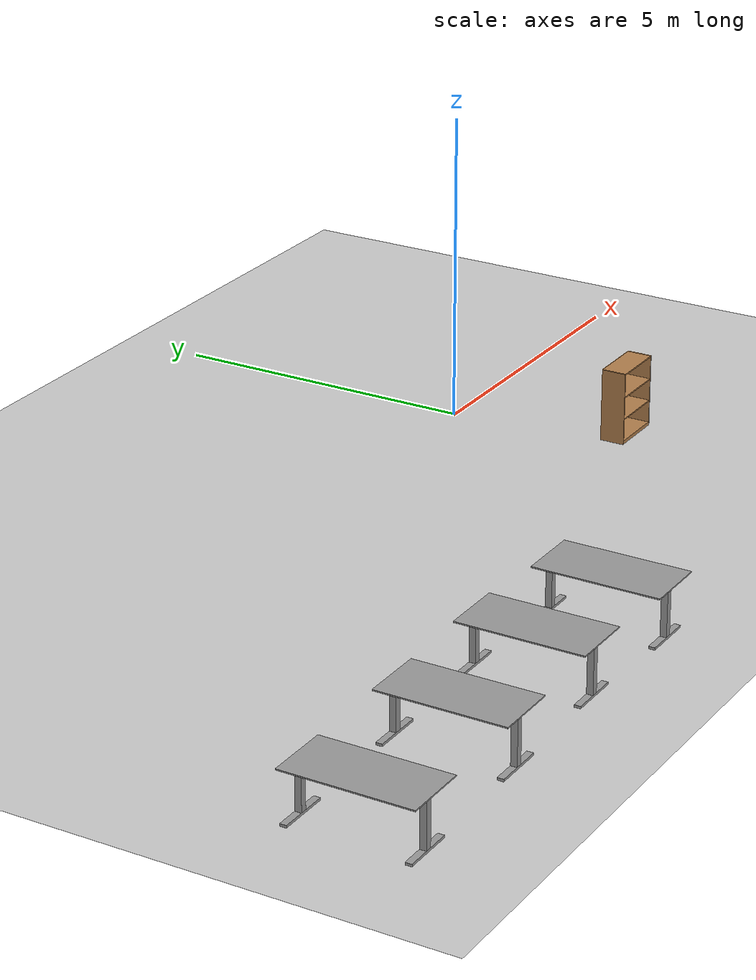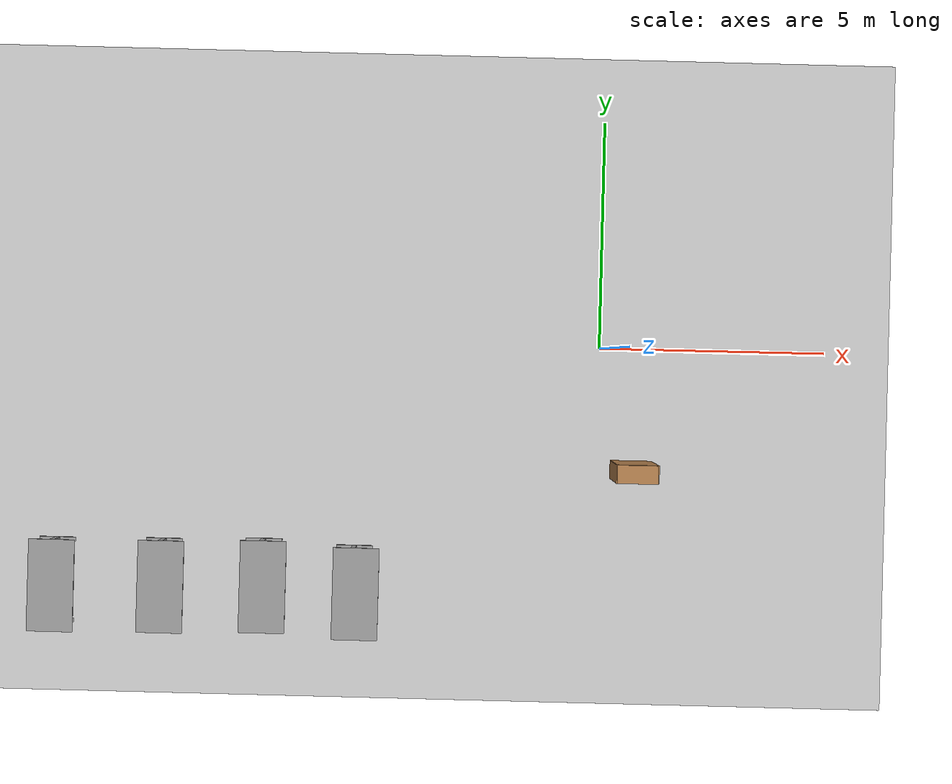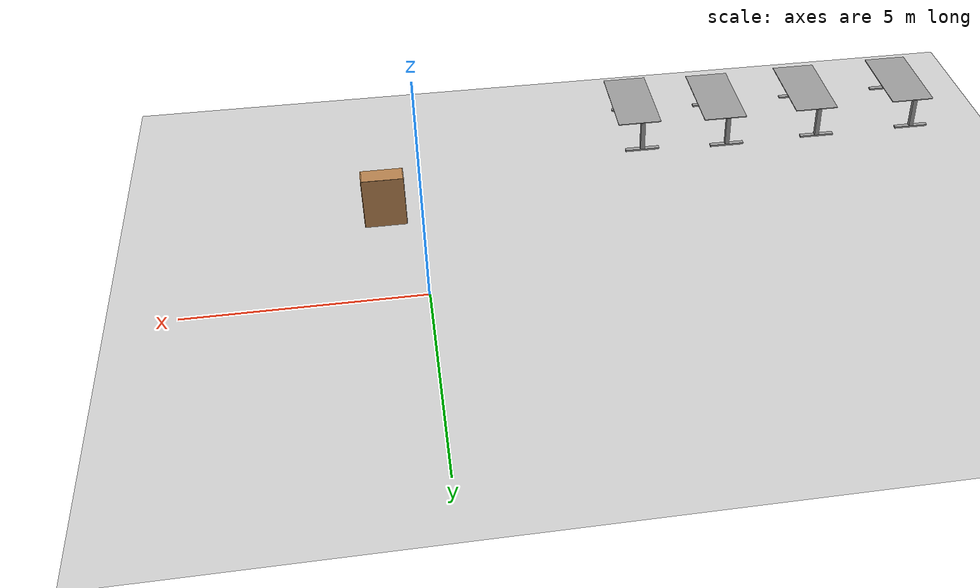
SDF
<sdf version="1.7">
 <world name="default">
  <model name="ground_plane">
   <static>1</static>
   <link name="link">
    <collision name="collision">
     <geometry><plane><normal>0 0 1</normal><size>100 100</size></plane></geometry>
     <surface>
      <contact><collide_bitmask>65535</collide_bitmask></contact>
      <friction><ode><mu>100</mu><mu2>50</mu2></ode></friction>
     </surface>
    </collision>
    <visual name="visual">
     <cast_shadows>0</cast_shadows>
     <geometry><plane><normal>0 0 1</normal><size>100 100</size></plane></geometry>
     <material>
      <script><uri>file://media/materials/scripts/gazebo.material</uri><name>Gazebo/Grey</name></script>
     </material>
    </visual>
   </link>
  </model>
  <model name="Desk">
   <link name="link_0">
    <pose>-5.87459 -9.93361 0.359623 0 -0 0</pose>
    <inertial>
     <mass>1</mass>
     <inertia>
      <ixx>0.166667</ixx>
      <ixy>0</ixy>
      <ixz>0</ixz>
      <iyy>0.166667</iyy>
      <iyz>0</iyz>
      <izz>0.166667</izz>
     </inertia>
    </inertial>
    <visual name="ModelPreview_0::link_0::visual_3">
     <pose>0 0 -0.1 0 -0 0</pose>
     <geometry><box><size>0.1 0.1 0.75</size></box></geometry>
     <material>
      <lighting>1</lighting>
      <script><uri>file://media/materials/scripts/gazebo.material</uri><name>Gazebo/Grey</name></script>
      <shader type="pixel"><normal_map>__default__</normal_map></shader>
      <ambient>0.3 0.3 0.3 1</ambient>
      <diffuse>0.7 0.7 0.7 1</diffuse>
      <specular>0.01 0.01 0.01 1</specular>
      <emissive>0 0 0 1</emissive>
     </material>
    </visual>
    <visual name="visual">
     <pose>0 0 -0.5 0 -0 0</pose>
     <geometry><box><size>0.8 0.1 0.05</size></box></geometry>
     <material>
      <lighting>1</lighting>
      <script><uri>file://media/materials/scripts/gazebo.material</uri><name>Gazebo/Grey</name></script>
      <shader type="pixel"><normal_map>__default__</normal_map></shader>
      <ambient>0.3 0.3 0.3 1</ambient>
      <diffuse>0.7 0.7 0.7 1</diffuse>
      <specular>0.01 0.01 0.01 1</specular>
      <emissive>0 0 0 1</emissive>
     </material>
    </visual>
    <visual name="ModelPreview_0::link_0::visual_2">
     <pose>0 1.8 -0.1 0 -0 0</pose>
     <geometry><box><size>0.1 0.1 0.75</size></box></geometry>
     <material>
      <lighting>1</lighting>
      <script><uri>file://media/materials/scripts/gazebo.material</uri><name>Gazebo/Grey</name></script>
      <shader type="pixel"><normal_map>__default__</normal_map></shader>
      <ambient>0.3 0.3 0.3 1</ambient>
      <diffuse>0.7 0.7 0.7 1</diffuse>
      <specular>0.01 0.01 0.01 1</specular>
      <emissive>0 0 0 1</emissive>
     </material>
    </visual>
    <visual name="ModelPreview_0::link_0::visual_1">
     <pose>0 1.8 -0.5 0 -0 0</pose>
     <geometry><box><size>0.8 0.1 0.05</size></box></geometry>
     <material>
      <lighting>1</lighting>
      <script><uri>file://media/materials/scripts/gazebo.material</uri><name>Gazebo/Grey</name></script>
      <shader type="pixel"><normal_map>__default__</normal_map></shader>
      <ambient>0.3 0.3 0.3 1</ambient>
      <diffuse>0.7 0.7 0.7 1</diffuse>
      <specular>0.01 0.01 0.01 1</specular>
      <emissive>0 0 0 1</emissive>
     </material>
    </visual>
    <collision name="collision">
     <pose>0 0.9 -0.1 0 -0 0</pose>
     <geometry><box><size>0.8 2 0.8</size></box></geometry>
     <surface>
      <friction>
       <ode><mu>1</mu><mu2>1</mu2><fdir1>0 0 0</fdir1><slip1>0</slip1><slip2>0</slip2></ode>
       <torsional>
        <coefficient>1</coefficient>
        <patch_radius>0</patch_radius>
        <surface_radius>0</surface_radius>
        <use_patch_radius>1</use_patch_radius>
        <ode><slip>0</slip></ode>
       </torsional>
      </friction>
      <bounce><restitution_coefficient>0</restitution_coefficient><threshold>1e+06</threshold></bounce>
      <contact>
       <collide_without_contact>0</collide_without_contact>
       <collide_without_contact_bitmask>1</collide_without_contact_bitmask>
       <collide_bitmask>1</collide_bitmask>
       <ode>
        <soft_cfm>0</soft_cfm>
        <soft_erp>0.2</soft_erp>
        <kp>1e+13</kp>
        <kd>1</kd>
        <max_vel>0.01</max_vel>
        <min_depth>0</min_depth>
       </ode>
       <bullet>
        <split_impulse>1</split_impulse>
        <split_impulse_penetration_threshold>-0.01</split_impulse_penetration_threshold>
        <soft_cfm>0</soft_cfm>
        <soft_erp>0.2</soft_erp>
        <kp>1e+13</kp>
        <kd>1</kd>
       </bullet>
      </contact>
     </surface>
    </collision>
   </link>
   <link name="link_1">
    <pose>-5.78051 -9.03331 0.640377 0 -0 0</pose>
    <inertial>
     <mass>1</mass>
     <inertia>
      <ixx>0.166667</ixx>
      <ixy>0</ixy>
      <ixz>0</ixz>
      <iyy>0.166667</iyy>
      <iyz>0</iyz>
      <izz>0.166667</izz>
     </inertia>
    </inertial>
    <visual name="visual">
     <geometry><box><size>1 2 0.02</size></box></geometry>
     <material>
      <lighting>1</lighting>
      <script><uri>file://media/materials/scripts/gazebo.material</uri><name>Gazebo/Grey</name></script>
      <shader type="pixel"><normal_map>__default__</normal_map></shader>
      <ambient>0.3 0.3 0.3 1</ambient>
      <diffuse>0.7 0.7 0.7 1</diffuse>
      <specular>0.01 0.01 0.01 1</specular>
      <emissive>0 0 0 1</emissive>
     </material>
    </visual>
    <collision name="collision">
     <geometry><box><size>1 2 0.02</size></box></geometry>
     <surface>
      <friction>
       <ode><mu>1</mu><mu2>1</mu2><fdir1>0 0 0</fdir1><slip1>0</slip1><slip2>0</slip2></ode>
       <torsional>
        <coefficient>1</coefficient>
        <patch_radius>0</patch_radius>
        <surface_radius>0</surface_radius>
        <use_patch_radius>1</use_patch_radius>
        <ode><slip>0</slip></ode>
       </torsional>
      </friction>
      <bounce><restitution_coefficient>0</restitution_coefficient><threshold>1e+06</threshold></bounce>
      <contact>
       <collide_without_contact>0</collide_without_contact>
       <collide_without_contact_bitmask>1</collide_without_contact_bitmask>
       <collide_bitmask>1</collide_bitmask>
       <ode>
        <soft_cfm>0</soft_cfm>
        <soft_erp>0.2</soft_erp>
        <kp>1e+13</kp>
        <kd>1</kd>
        <max_vel>0.01</max_vel>
        <min_depth>0</min_depth>
       </ode>
       <bullet>
        <split_impulse>1</split_impulse>
        <split_impulse_penetration_threshold>-0.01</split_impulse_penetration_threshold>
        <soft_cfm>0</soft_cfm>
        <soft_erp>0.2</soft_erp>
        <kp>1e+13</kp>
        <kd>1</kd>
       </bullet>
      </contact>
     </surface>
    </collision>
   </link>
   <joint name="link_0_JOINT_1" type="revolute">
    <parent>link_0</parent>
    <child>link_1</child>
    <axis>
     <xyz>1 0 0</xyz>
     <limit>
      <lower>-1.79769e+308</lower>
      <upper>1.79769e+308</upper>
      <effort>-1</effort>
      <velocity>-1</velocity>
     </limit>
     <dynamics>
      <spring_reference>0</spring_reference>
      <spring_stiffness>0</spring_stiffness>
      <damping>0</damping>
     </dynamics>
    </axis>
    <physics>
     <ode><limit><cfm>0</cfm><erp>0.2</erp></limit><suspension><cfm>0</cfm><erp>0.2</erp></suspension></ode>
    </physics>
   </joint>
   <static>0</static>
   <pose>0.541099 3.55014 0.140352 -2e-06 -0 -0.001993</pose>
  </model>
  <model name="Desk_clone_1">
   <link name="link_0">
    <pose>-5.87459 -9.93361 0.359623 0 -0 0</pose>
    <inertial>
     <mass>1</mass>
     <inertia>
      <ixx>0.166667</ixx>
      <ixy>0</ixy>
      <ixz>0</ixz>
      <iyy>0.166667</iyy>
      <iyz>0</iyz>
      <izz>0.166667</izz>
     </inertia>
    </inertial>
    <visual name="ModelPreview_0::link_0::visual_3">
     <pose>0 0 -0.1 0 -0 0</pose>
     <geometry><box><size>0.1 0.1 0.75</size></box></geometry>
     <material>
      <lighting>1</lighting>
      <script><uri>file://media/materials/scripts/gazebo.material</uri><name>Gazebo/Grey</name></script>
      <shader type="pixel"><normal_map>__default__</normal_map></shader>
      <ambient>0.3 0.3 0.3 1</ambient>
      <diffuse>0.7 0.7 0.7 1</diffuse>
      <specular>0.01 0.01 0.01 1</specular>
      <emissive>0 0 0 1</emissive>
     </material>
    </visual>
    <visual name="visual">
     <pose>0 0 -0.5 0 -0 0</pose>
     <geometry><box><size>0.8 0.1 0.05</size></box></geometry>
     <material>
      <lighting>1</lighting>
      <script><uri>file://media/materials/scripts/gazebo.material</uri><name>Gazebo/Grey</name></script>
      <shader type="pixel"><normal_map>__default__</normal_map></shader>
      <ambient>0.3 0.3 0.3 1</ambient>
      <diffuse>0.7 0.7 0.7 1</diffuse>
      <specular>0.01 0.01 0.01 1</specular>
      <emissive>0 0 0 1</emissive>
     </material>
    </visual>
    <visual name="ModelPreview_0::link_0::visual_2">
     <pose>0 1.8 -0.1 0 -0 0</pose>
     <geometry><box><size>0.1 0.1 0.75</size></box></geometry>
     <material>
      <lighting>1</lighting>
      <script><uri>file://media/materials/scripts/gazebo.material</uri><name>Gazebo/Grey</name></script>
      <shader type="pixel"><normal_map>__default__</normal_map></shader>
      <ambient>0.3 0.3 0.3 1</ambient>
      <diffuse>0.7 0.7 0.7 1</diffuse>
      <specular>0.01 0.01 0.01 1</specular>
      <emissive>0 0 0 1</emissive>
     </material>
    </visual>
    <visual name="ModelPreview_0::link_0::visual_1">
     <pose>0 1.8 -0.5 0 -0 0</pose>
     <geometry><box><size>0.8 0.1 0.05</size></box></geometry>
     <material>
      <lighting>1</lighting>
      <script><uri>file://media/materials/scripts/gazebo.material</uri><name>Gazebo/Grey</name></script>
      <shader type="pixel"><normal_map>__default__</normal_map></shader>
      <ambient>0.3 0.3 0.3 1</ambient>
      <diffuse>0.7 0.7 0.7 1</diffuse>
      <specular>0.01 0.01 0.01 1</specular>
      <emissive>0 0 0 1</emissive>
     </material>
    </visual>
    <collision name="collision">
     <pose>0 0.9 -0.1 0 -0 0</pose>
     <geometry><box><size>0.8 2 0.8</size></box></geometry>
     <surface>
      <friction>
       <ode><mu>1</mu><mu2>1</mu2><fdir1>0 0 0</fdir1><slip1>0</slip1><slip2>0</slip2></ode>
       <torsional>
        <coefficient>1</coefficient>
        <patch_radius>0</patch_radius>
        <surface_radius>0</surface_radius>
        <use_patch_radius>1</use_patch_radius>
        <ode><slip>0</slip></ode>
       </torsional>
      </friction>
      <bounce><restitution_coefficient>0</restitution_coefficient><threshold>1e+06</threshold></bounce>
      <contact>
       <collide_without_contact>0</collide_without_contact>
       <collide_without_contact_bitmask>1</collide_without_contact_bitmask>
       <collide_bitmask>1</collide_bitmask>
       <ode>
        <soft_cfm>0</soft_cfm>
        <soft_erp>0.2</soft_erp>
        <kp>1e+13</kp>
        <kd>1</kd>
        <max_vel>0.01</max_vel>
        <min_depth>0</min_depth>
       </ode>
       <bullet>
        <split_impulse>1</split_impulse>
        <split_impulse_penetration_threshold>-0.01</split_impulse_penetration_threshold>
        <soft_cfm>0</soft_cfm>
        <soft_erp>0.2</soft_erp>
        <kp>1e+13</kp>
        <kd>1</kd>
       </bullet>
      </contact>
     </surface>
    </collision>
   </link>
   <link name="link_1">
    <pose>-5.78051 -9.03331 0.640377 0 -0 0</pose>
    <inertial>
     <mass>1</mass>
     <inertia>
      <ixx>0.166667</ixx>
      <ixy>0</ixy>
      <ixz>0</ixz>
      <iyy>0.166667</iyy>
      <iyz>0</iyz>
      <izz>0.166667</izz>
     </inertia>
    </inertial>
    <visual name="visual">
     <geometry><box><size>1 2 0.02</size></box></geometry>
     <material>
      <lighting>1</lighting>
      <script><uri>file://media/materials/scripts/gazebo.material</uri><name>Gazebo/Grey</name></script>
      <shader type="pixel"><normal_map>__default__</normal_map></shader>
      <ambient>0.3 0.3 0.3 1</ambient>
      <diffuse>0.7 0.7 0.7 1</diffuse>
      <specular>0.01 0.01 0.01 1</specular>
      <emissive>0 0 0 1</emissive>
     </material>
    </visual>
    <collision name="collision">
     <geometry><box><size>1 2 0.02</size></box></geometry>
     <surface>
      <friction>
       <ode><mu>1</mu><mu2>1</mu2><fdir1>0 0 0</fdir1><slip1>0</slip1><slip2>0</slip2></ode>
       <torsional>
        <coefficient>1</coefficient>
        <patch_radius>0</patch_radius>
        <surface_radius>0</surface_radius>
        <use_patch_radius>1</use_patch_radius>
        <ode><slip>0</slip></ode>
       </torsional>
      </friction>
      <bounce><restitution_coefficient>0</restitution_coefficient><threshold>1e+06</threshold></bounce>
      <contact>
       <collide_without_contact>0</collide_without_contact>
       <collide_without_contact_bitmask>1</collide_without_contact_bitmask>
       <collide_bitmask>1</collide_bitmask>
       <ode>
        <soft_cfm>0</soft_cfm>
        <soft_erp>0.2</soft_erp>
        <kp>1e+13</kp>
        <kd>1</kd>
        <max_vel>0.01</max_vel>
        <min_depth>0</min_depth>
       </ode>
       <bullet>
        <split_impulse>1</split_impulse>
        <split_impulse_penetration_threshold>-0.01</split_impulse_penetration_threshold>
        <soft_cfm>0</soft_cfm>
        <soft_erp>0.2</soft_erp>
        <kp>1e+13</kp>
        <kd>1</kd>
       </bullet>
      </contact>
     </surface>
    </collision>
   </link>
   <joint name="link_0_JOINT_1" type="revolute">
    <parent>link_0</parent>
    <child>link_1</child>
    <axis>
     <xyz>1 0 0</xyz>
     <limit>
      <lower>-1.79769e+308</lower>
      <upper>1.79769e+308</upper>
      <effort>-1</effort>
      <velocity>-1</velocity>
     </limit>
     <dynamics>
      <spring_reference>0</spring_reference>
      <spring_stiffness>0</spring_stiffness>
      <damping>0</damping>
     </dynamics>
    </axis>
    <physics>
     <ode><limit><cfm>0</cfm><erp>0.2</erp></limit><suspension><cfm>0</cfm><erp>0.2</erp></suspension></ode>
    </physics>
   </joint>
   <static>0</static>
   <pose>-6.07382 3.57243 0.140352 -2e-06 -0 -0.001997</pose>
  </model>
  <model name="Desk_clone_1_clone">
   <link name="link_0">
    <pose>-5.87459 -9.93361 0.359623 0 -0 0</pose>
    <inertial>
     <mass>1</mass>
     <inertia>
      <ixx>0.166667</ixx>
      <ixy>0</ixy>
      <ixz>0</ixz>
      <iyy>0.166667</iyy>
      <iyz>0</iyz>
      <izz>0.166667</izz>
     </inertia>
    </inertial>
    <visual name="ModelPreview_0::link_0::visual_3">
     <pose>0 0 -0.1 0 -0 0</pose>
     <geometry><box><size>0.1 0.1 0.75</size></box></geometry>
     <material>
      <lighting>1</lighting>
      <script><uri>file://media/materials/scripts/gazebo.material</uri><name>Gazebo/Grey</name></script>
      <shader type="pixel"><normal_map>__default__</normal_map></shader>
      <ambient>0.3 0.3 0.3 1</ambient>
      <diffuse>0.7 0.7 0.7 1</diffuse>
      <specular>0.01 0.01 0.01 1</specular>
      <emissive>0 0 0 1</emissive>
     </material>
    </visual>
    <visual name="visual">
     <pose>0 0 -0.5 0 -0 0</pose>
     <geometry><box><size>0.8 0.1 0.05</size></box></geometry>
     <material>
      <lighting>1</lighting>
      <script><uri>file://media/materials/scripts/gazebo.material</uri><name>Gazebo/Grey</name></script>
      <shader type="pixel"><normal_map>__default__</normal_map></shader>
      <ambient>0.3 0.3 0.3 1</ambient>
      <diffuse>0.7 0.7 0.7 1</diffuse>
      <specular>0.01 0.01 0.01 1</specular>
      <emissive>0 0 0 1</emissive>
     </material>
    </visual>
    <visual name="ModelPreview_0::link_0::visual_2">
     <pose>0 1.8 -0.1 0 -0 0</pose>
     <geometry><box><size>0.1 0.1 0.75</size></box></geometry>
     <material>
      <lighting>1</lighting>
      <script><uri>file://media/materials/scripts/gazebo.material</uri><name>Gazebo/Grey</name></script>
      <shader type="pixel"><normal_map>__default__</normal_map></shader>
      <ambient>0.3 0.3 0.3 1</ambient>
      <diffuse>0.7 0.7 0.7 1</diffuse>
      <specular>0.01 0.01 0.01 1</specular>
      <emissive>0 0 0 1</emissive>
     </material>
    </visual>
    <visual name="ModelPreview_0::link_0::visual_1">
     <pose>0 1.8 -0.5 0 -0 0</pose>
     <geometry><box><size>0.8 0.1 0.05</size></box></geometry>
     <material>
      <lighting>1</lighting>
      <script><uri>file://media/materials/scripts/gazebo.material</uri><name>Gazebo/Grey</name></script>
      <shader type="pixel"><normal_map>__default__</normal_map></shader>
      <ambient>0.3 0.3 0.3 1</ambient>
      <diffuse>0.7 0.7 0.7 1</diffuse>
      <specular>0.01 0.01 0.01 1</specular>
      <emissive>0 0 0 1</emissive>
     </material>
    </visual>
    <collision name="collision">
     <pose>0 0.9 -0.1 0 -0 0</pose>
     <geometry><box><size>0.8 2 0.8</size></box></geometry>
     <surface>
      <friction>
       <ode><mu>1</mu><mu2>1</mu2><fdir1>0 0 0</fdir1><slip1>0</slip1><slip2>0</slip2></ode>
       <torsional>
        <coefficient>1</coefficient>
        <patch_radius>0</patch_radius>
        <surface_radius>0</surface_radius>
        <use_patch_radius>1</use_patch_radius>
        <ode><slip>0</slip></ode>
       </torsional>
      </friction>
      <bounce><restitution_coefficient>0</restitution_coefficient><threshold>1e+06</threshold></bounce>
      <contact>
       <collide_without_contact>0</collide_without_contact>
       <collide_without_contact_bitmask>1</collide_without_contact_bitmask>
       <collide_bitmask>1</collide_bitmask>
       <ode>
        <soft_cfm>0</soft_cfm>
        <soft_erp>0.2</soft_erp>
        <kp>1e+13</kp>
        <kd>1</kd>
        <max_vel>0.01</max_vel>
        <min_depth>0</min_depth>
       </ode>
       <bullet>
        <split_impulse>1</split_impulse>
        <split_impulse_penetration_threshold>-0.01</split_impulse_penetration_threshold>
        <soft_cfm>0</soft_cfm>
        <soft_erp>0.2</soft_erp>
        <kp>1e+13</kp>
        <kd>1</kd>
       </bullet>
      </contact>
     </surface>
    </collision>
   </link>
   <link name="link_1">
    <pose>-5.78051 -9.03331 0.640377 0 -0 0</pose>
    <inertial>
     <mass>1</mass>
     <inertia>
      <ixx>0.166667</ixx>
      <ixy>0</ixy>
      <ixz>0</ixz>
      <iyy>0.166667</iyy>
      <iyz>0</iyz>
      <izz>0.166667</izz>
     </inertia>
    </inertial>
    <visual name="visual">
     <geometry><box><size>1 2 0.02</size></box></geometry>
     <material>
      <lighting>1</lighting>
      <script><uri>file://media/materials/scripts/gazebo.material</uri><name>Gazebo/Grey</name></script>
      <shader type="pixel"><normal_map>__default__</normal_map></shader>
      <ambient>0.3 0.3 0.3 1</ambient>
      <diffuse>0.7 0.7 0.7 1</diffuse>
      <specular>0.01 0.01 0.01 1</specular>
      <emissive>0 0 0 1</emissive>
     </material>
    </visual>
    <collision name="collision">
     <geometry><box><size>1 2 0.02</size></box></geometry>
     <surface>
      <friction>
       <ode><mu>1</mu><mu2>1</mu2><fdir1>0 0 0</fdir1><slip1>0</slip1><slip2>0</slip2></ode>
       <torsional>
        <coefficient>1</coefficient>
        <patch_radius>0</patch_radius>
        <surface_radius>0</surface_radius>
        <use_patch_radius>1</use_patch_radius>
        <ode><slip>0</slip></ode>
       </torsional>
      </friction>
      <bounce><restitution_coefficient>0</restitution_coefficient><threshold>1e+06</threshold></bounce>
      <contact>
       <collide_without_contact>0</collide_without_contact>
       <collide_without_contact_bitmask>1</collide_without_contact_bitmask>
       <collide_bitmask>1</collide_bitmask>
       <ode>
        <soft_cfm>0</soft_cfm>
        <soft_erp>0.2</soft_erp>
        <kp>1e+13</kp>
        <kd>1</kd>
        <max_vel>0.01</max_vel>
        <min_depth>0</min_depth>
       </ode>
       <bullet>
        <split_impulse>1</split_impulse>
        <split_impulse_penetration_threshold>-0.01</split_impulse_penetration_threshold>
        <soft_cfm>0</soft_cfm>
        <soft_erp>0.2</soft_erp>
        <kp>1e+13</kp>
        <kd>1</kd>
       </bullet>
      </contact>
     </surface>
    </collision>
   </link>
   <joint name="link_0_JOINT_1" type="revolute">
    <parent>link_0</parent>
    <child>link_1</child>
    <axis>
     <xyz>1 0 0</xyz>
     <limit>
      <lower>-1.79769e+308</lower>
      <upper>1.79769e+308</upper>
      <effort>-1</effort>
      <velocity>-1</velocity>
     </limit>
     <dynamics>
      <spring_reference>0</spring_reference>
      <spring_stiffness>0</spring_stiffness>
      <damping>0</damping>
     </dynamics>
    </axis>
    <physics>
     <ode><limit><cfm>0</cfm><erp>0.2</erp></limit><suspension><cfm>0</cfm><erp>0.2</erp></suspension></ode>
    </physics>
   </joint>
   <static>0</static>
   <pose>-3.69849 3.60191 0.140399 1e-06 -2e-06 -0.001997</pose>
  </model>
  <model name="Desk_clone_1_clone_clone">
   <link name="link_0">
    <pose>-5.87459 -9.93361 0.359623 0 -0 0</pose>
    <inertial>
     <mass>1</mass>
     <inertia>
      <ixx>0.166667</ixx>
      <ixy>0</ixy>
      <ixz>0</ixz>
      <iyy>0.166667</iyy>
      <iyz>0</iyz>
      <izz>0.166667</izz>
     </inertia>
    </inertial>
    <visual name="ModelPreview_0::link_0::visual_3">
     <pose>0 0 -0.1 0 -0 0</pose>
     <geometry><box><size>0.1 0.1 0.75</size></box></geometry>
     <material>
      <lighting>1</lighting>
      <script><uri>file://media/materials/scripts/gazebo.material</uri><name>Gazebo/Grey</name></script>
      <shader type="pixel"><normal_map>__default__</normal_map></shader>
      <ambient>0.3 0.3 0.3 1</ambient>
      <diffuse>0.7 0.7 0.7 1</diffuse>
      <specular>0.01 0.01 0.01 1</specular>
      <emissive>0 0 0 1</emissive>
     </material>
    </visual>
    <visual name="visual">
     <pose>0 0 -0.5 0 -0 0</pose>
     <geometry><box><size>0.8 0.1 0.05</size></box></geometry>
     <material>
      <lighting>1</lighting>
      <script><uri>file://media/materials/scripts/gazebo.material</uri><name>Gazebo/Grey</name></script>
      <shader type="pixel"><normal_map>__default__</normal_map></shader>
      <ambient>0.3 0.3 0.3 1</ambient>
      <diffuse>0.7 0.7 0.7 1</diffuse>
      <specular>0.01 0.01 0.01 1</specular>
      <emissive>0 0 0 1</emissive>
     </material>
    </visual>
    <visual name="ModelPreview_0::link_0::visual_2">
     <pose>0 1.8 -0.1 0 -0 0</pose>
     <geometry><box><size>0.1 0.1 0.75</size></box></geometry>
     <material>
      <lighting>1</lighting>
      <script><uri>file://media/materials/scripts/gazebo.material</uri><name>Gazebo/Grey</name></script>
      <shader type="pixel"><normal_map>__default__</normal_map></shader>
      <ambient>0.3 0.3 0.3 1</ambient>
      <diffuse>0.7 0.7 0.7 1</diffuse>
      <specular>0.01 0.01 0.01 1</specular>
      <emissive>0 0 0 1</emissive>
     </material>
    </visual>
    <visual name="ModelPreview_0::link_0::visual_1">
     <pose>0 1.8 -0.5 0 -0 0</pose>
     <geometry><box><size>0.8 0.1 0.05</size></box></geometry>
     <material>
      <lighting>1</lighting>
      <script><uri>file://media/materials/scripts/gazebo.material</uri><name>Gazebo/Grey</name></script>
      <shader type="pixel"><normal_map>__default__</normal_map></shader>
      <ambient>0.3 0.3 0.3 1</ambient>
      <diffuse>0.7 0.7 0.7 1</diffuse>
      <specular>0.01 0.01 0.01 1</specular>
      <emissive>0 0 0 1</emissive>
     </material>
    </visual>
    <collision name="collision">
     <pose>0 0.9 -0.1 0 -0 0</pose>
     <geometry><box><size>0.8 2 0.8</size></box></geometry>
     <surface>
      <friction>
       <ode><mu>1</mu><mu2>1</mu2><fdir1>0 0 0</fdir1><slip1>0</slip1><slip2>0</slip2></ode>
       <torsional>
        <coefficient>1</coefficient>
        <patch_radius>0</patch_radius>
        <surface_radius>0</surface_radius>
        <use_patch_radius>1</use_patch_radius>
        <ode><slip>0</slip></ode>
       </torsional>
      </friction>
      <bounce><restitution_coefficient>0</restitution_coefficient><threshold>1e+06</threshold></bounce>
      <contact>
       <collide_without_contact>0</collide_without_contact>
       <collide_without_contact_bitmask>1</collide_without_contact_bitmask>
       <collide_bitmask>1</collide_bitmask>
       <ode>
        <soft_cfm>0</soft_cfm>
        <soft_erp>0.2</soft_erp>
        <kp>1e+13</kp>
        <kd>1</kd>
        <max_vel>0.01</max_vel>
        <min_depth>0</min_depth>
       </ode>
       <bullet>
        <split_impulse>1</split_impulse>
        <split_impulse_penetration_threshold>-0.01</split_impulse_penetration_threshold>
        <soft_cfm>0</soft_cfm>
        <soft_erp>0.2</soft_erp>
        <kp>1e+13</kp>
        <kd>1</kd>
       </bullet>
      </contact>
     </surface>
    </collision>
   </link>
   <link name="link_1">
    <pose>-5.78051 -9.03331 0.640377 0 -0 0</pose>
    <inertial>
     <mass>1</mass>
     <inertia>
      <ixx>0.166667</ixx>
      <ixy>0</ixy>
      <ixz>0</ixz>
      <iyy>0.166667</iyy>
      <iyz>0</iyz>
      <izz>0.166667</izz>
     </inertia>
    </inertial>
    <visual name="visual">
     <geometry><box><size>1 2 0.02</size></box></geometry>
     <material>
      <lighting>1</lighting>
      <script><uri>file://media/materials/scripts/gazebo.material</uri><name>Gazebo/Grey</name></script>
      <shader type="pixel"><normal_map>__default__</normal_map></shader>
      <ambient>0.3 0.3 0.3 1</ambient>
      <diffuse>0.7 0.7 0.7 1</diffuse>
      <specular>0.01 0.01 0.01 1</specular>
      <emissive>0 0 0 1</emissive>
     </material>
    </visual>
    <collision name="collision">
     <geometry><box><size>1 2 0.02</size></box></geometry>
     <surface>
      <friction>
       <ode><mu>1</mu><mu2>1</mu2><fdir1>0 0 0</fdir1><slip1>0</slip1><slip2>0</slip2></ode>
       <torsional>
        <coefficient>1</coefficient>
        <patch_radius>0</patch_radius>
        <surface_radius>0</surface_radius>
        <use_patch_radius>1</use_patch_radius>
        <ode><slip>0</slip></ode>
       </torsional>
      </friction>
      <bounce><restitution_coefficient>0</restitution_coefficient><threshold>1e+06</threshold></bounce>
      <contact>
       <collide_without_contact>0</collide_without_contact>
       <collide_without_contact_bitmask>1</collide_without_contact_bitmask>
       <collide_bitmask>1</collide_bitmask>
       <ode>
        <soft_cfm>0</soft_cfm>
        <soft_erp>0.2</soft_erp>
        <kp>1e+13</kp>
        <kd>1</kd>
        <max_vel>0.01</max_vel>
        <min_depth>0</min_depth>
       </ode>
       <bullet>
        <split_impulse>1</split_impulse>
        <split_impulse_penetration_threshold>-0.01</split_impulse_penetration_threshold>
        <soft_cfm>0</soft_cfm>
        <soft_erp>0.2</soft_erp>
        <kp>1e+13</kp>
        <kd>1</kd>
       </bullet>
      </contact>
     </surface>
    </collision>
   </link>
   <joint name="link_0_JOINT_1" type="revolute">
    <parent>link_0</parent>
    <child>link_1</child>
    <axis>
     <xyz>1 0 0</xyz>
     <limit>
      <lower>-1.79769e+308</lower>
      <upper>1.79769e+308</upper>
      <effort>-1</effort>
      <velocity>-1</velocity>
     </limit>
     <dynamics>
      <spring_reference>0</spring_reference>
      <spring_stiffness>0</spring_stiffness>
      <damping>0</damping>
     </dynamics>
    </axis>
    <physics>
     <ode><limit><cfm>0</cfm><erp>0.2</erp></limit><suspension><cfm>0</cfm><erp>0.2</erp></suspension></ode>
    </physics>
   </joint>
   <static>0</static>
   <pose>-1.47769 3.65376 0.140401 1e-06 -2e-06 -0.001997</pose>
  </model>
  <model name="bookshelf">
   <static>1</static>
   <link name="link">
    <inertial><mass>1</mass></inertial>
    <collision name="back">
     <pose>0 0.005 0.6 0 -0 0</pose>
     <geometry><box><size>0.9 0.01 1.2</size></box></geometry>
    </collision>
    <visual name="visual1">
     <pose>0 0.005 0.6 0 -0 0</pose>
     <geometry><box><size>0.9 0.01 1.2</size></box></geometry>
     <material>
      <script><uri>file://media/materials/scripts/gazebo.material</uri><name>Gazebo/Wood</name></script>
     </material>
    </visual>
    <collision name="left_side">
     <pose>0.45 -0.195 0.6 0 -0 0</pose>
     <geometry><box><size>0.02 0.4 1.2</size></box></geometry>
    </collision>
    <visual name="visual2">
     <pose>0.45 -0.195 0.6 0 -0 0</pose>
     <geometry><box><size>0.02 0.4 1.2</size></box></geometry>
     <material>
      <script><uri>file://media/materials/scripts/gazebo.material</uri><name>Gazebo/Wood</name></script>
     </material>
    </visual>
    <collision name="right_side">
     <pose>-0.45 -0.195 0.6 0 -0 0</pose>
     <geometry><box><size>0.02 0.4 1.2</size></box></geometry>
    </collision>
    <visual name="visual3">
     <pose>-0.45 -0.195 0.6 0 -0 0</pose>
     <geometry><box><size>0.02 0.4 1.2</size></box></geometry>
     <material>
      <script><uri>file://media/materials/scripts/gazebo.material</uri><name>Gazebo/Wood</name></script>
     </material>
    </visual>
    <collision name="bottom">
     <pose>0 -0.195 0.03 0 -0 0</pose>
     <geometry><box><size>0.88 0.4 0.06</size></box></geometry>
    </collision>
    <visual name="visual4">
     <pose>0 -0.195 0.03 0 -0 0</pose>
     <geometry><box><size>0.88 0.4 0.06</size></box></geometry>
     <material>
      <script><uri>file://media/materials/scripts/gazebo.material</uri><name>Gazebo/Wood</name></script>
     </material>
    </visual>
    <collision name="top">
     <pose>0 -0.195 1.19 0 -0 0</pose>
     <geometry><box><size>0.88 0.4 0.02</size></box></geometry>
    </collision>
    <visual name="visual5">
     <pose>0 -0.195 1.19 0 -0 0</pose>
     <geometry><box><size>0.88 0.4 0.02</size></box></geometry>
     <material>
      <script><uri>file://media/materials/scripts/gazebo.material</uri><name>Gazebo/Wood</name></script>
     </material>
    </visual>
    <collision name="low_shelf">
     <pose>0 -0.195 0.43 0 -0 0</pose>
     <geometry><box><size>0.88 0.4 0.02</size></box></geometry>
    </collision>
    <visual name="visual6">
     <pose>0 -0.195 0.43 0 -0 0</pose>
     <geometry><box><size>0.88 0.4 0.02</size></box></geometry>
     <material>
      <script><uri>file://media/materials/scripts/gazebo.material</uri><name>Gazebo/Wood</name></script>
     </material>
    </visual>
    <collision name="high_shelf">
     <pose>0 -0.195 0.8 0 -0 0</pose>
     <geometry><box><size>0.88 0.4 0.02</size></box></geometry>
    </collision>
    <visual name="visual7">
     <pose>0 -0.195 0.8 0 -0 0</pose>
     <geometry><box><size>0.88 0.4 0.02</size></box></geometry>
     <material>
      <script><uri>file://media/materials/scripts/gazebo.material</uri><name>Gazebo/Wood</name></script>
     </material>
    </visual>
   </link>
   <pose>0.754517 -2.49502 0 0 -0 0</pose>
  </model>
 </world>
</sdf>
